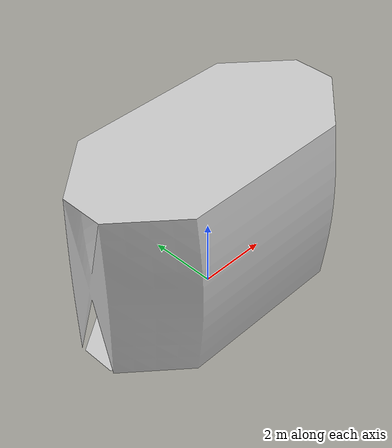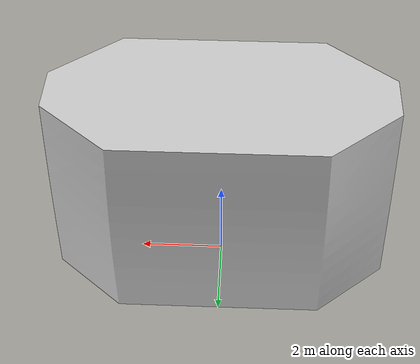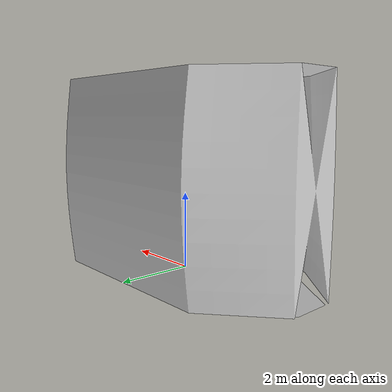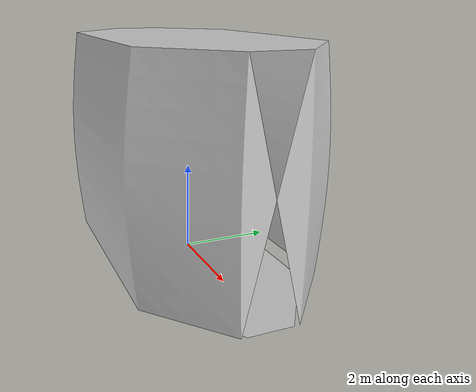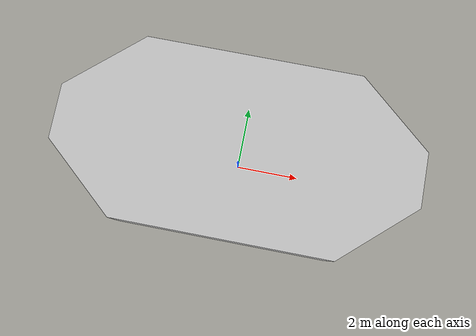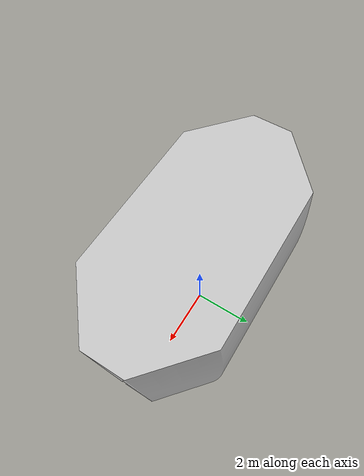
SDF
<?xml version="1.0"?>
<sdf version="1.6">
  <model name="large_boat">
    <static>true</static>
    <link name="link">
      <collision name="collision">
        <geometry>
          <mesh>
            <uri>/home/demo/catkin_ws/src/ship_painter/models/large_boat/meshes/boat.stl</uri>
            <scale>1 1 1</scale>
          </mesh>
        </geometry>
      </collision>
      <visual name="visual">
        <geometry>
          <mesh>
            <uri>/home/demo/catkin_ws/src/ship_painter/models/large_boat/meshes/boat.stl</uri>
            <scale>1 1 1</scale>
          </mesh>
        </geometry>
        <material>
          <ambient>0.7 0.7 0.7 1</ambient>
          <diffuse>0.8 0.8 0.8 1</diffuse>
          <specular>0.1 0.1 0.1 1</specular>
        </material>
      </visual>
      <inertial>
        <mass>10000</mass>
        <inertia>
          <ixx>10000</ixx>
          <ixy>0</ixy>
          <ixz>0</ixz>
          <iyy>10000</iyy>
          <iyz>0</iyz>
          <izz>10000</izz>
        </inertia>
      </inertial>
    </link>
  </model>
</sdf>
